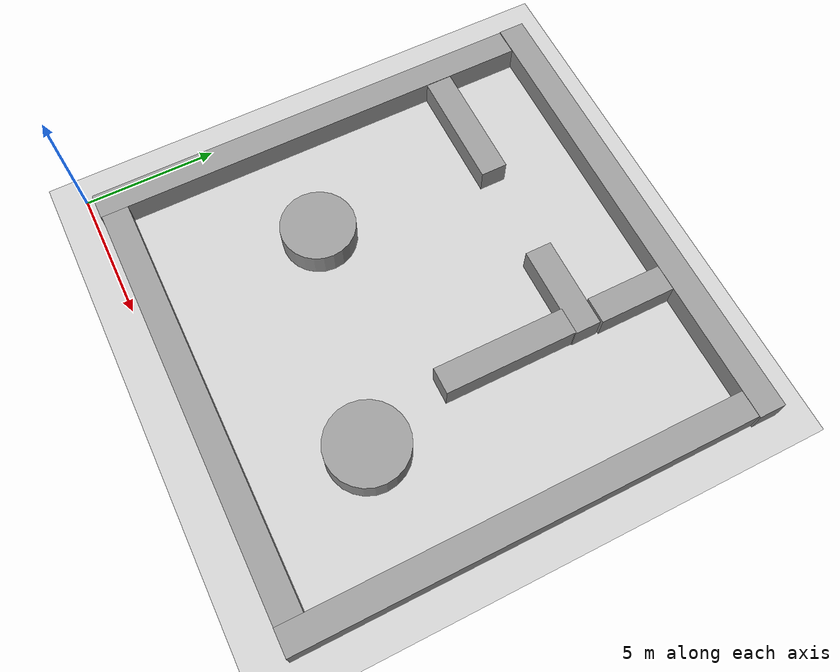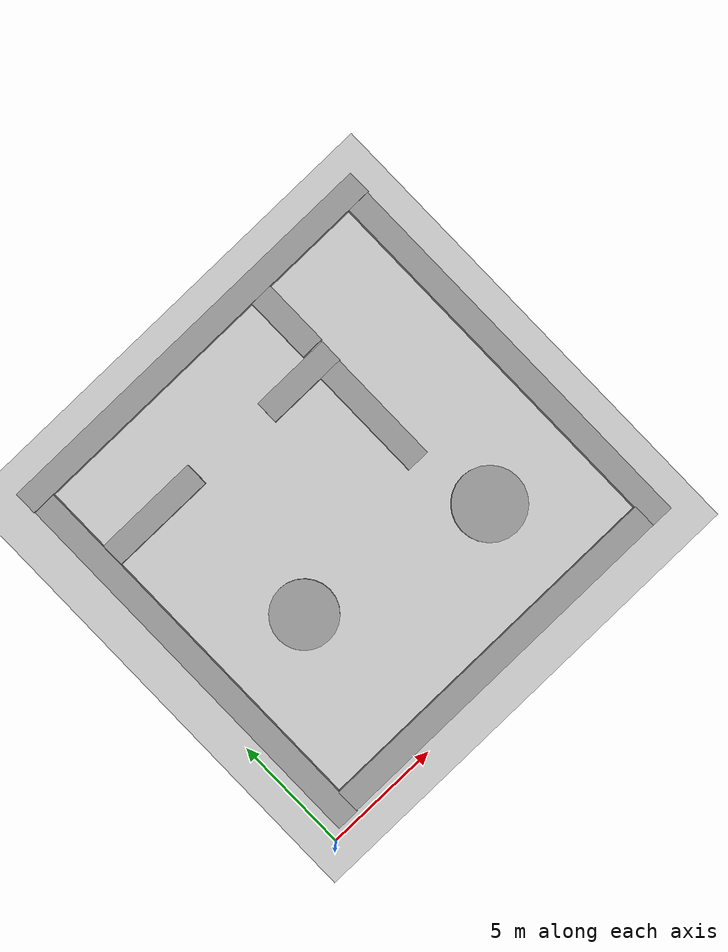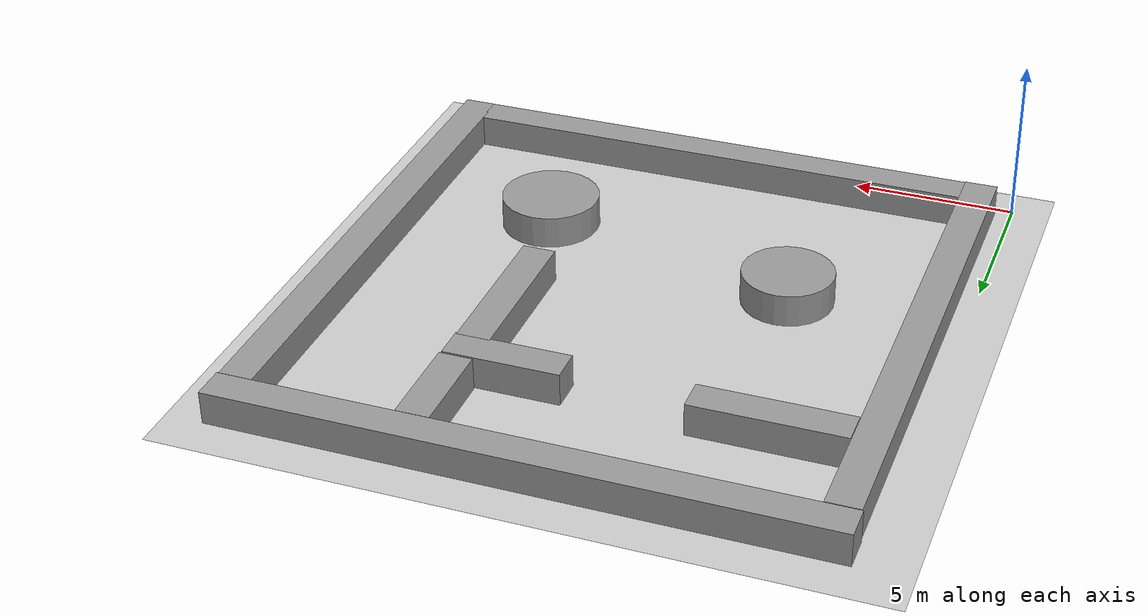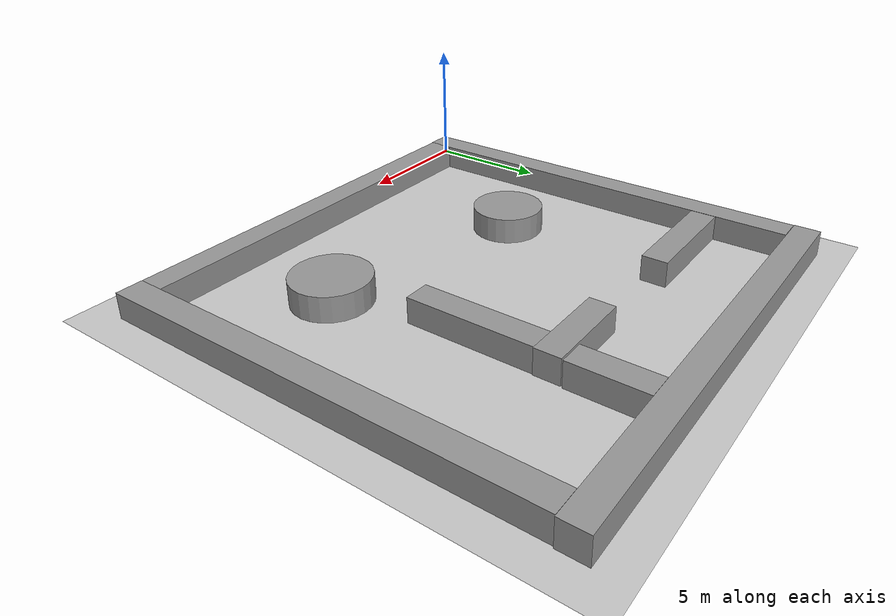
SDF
<sdf version="1.4">
 <world name="default">
  <light name="sun" type="directional">
   <pose>0 0 10 0 -0 0</pose>
   <diffuse>0.8 0.8 0.8 1</diffuse>
   <specular>0.2 0.2 0.2 1</specular>
   <attenuation>
    <range>1000</range>
    <constant>0.9</constant>
    <linear>0.01</linear>
    <quadratic>0.001</quadratic>
   </attenuation>
   <direction>-0.5 0.1 -0.9</direction>
  </light>
  <model name="ground_plane">
   <static>1</static>
   <link name="link">
    <collision name="collision">
     <geometry><plane><normal>0 0 1</normal><size>100 100</size></plane></geometry>
     <surface><friction><ode><mu>100</mu><mu2>50</mu2></ode></friction></surface>
    </collision>
    <visual name="visual">
     <cast_shadows>0</cast_shadows>
     <geometry><plane><normal>0 0 1</normal><size>100 100</size></plane></geometry>
     <material>
      <script><uri>file://media/materials/scripts/gazebo.material</uri><name>Gazebo/Grey</name></script>
     </material>
    </visual>
    <velocity_decay><linear>0</linear><angular>0</angular></velocity_decay>
   </link>
  </model>
  <physics type="ode">
   <max_step_size>0.001</max_step_size>
   <real_time_factor>1</real_time_factor>
   <real_time_update_rate>1000</real_time_update_rate>
   <gravity>0 0 -9.8</gravity>
  </physics>
  <scene><ambient>0.4 0.4 0.4 1</ambient><background>0.7 0.7 0.7 1</background><shadows>1</shadows></scene>
  <spherical_coordinates>
   <surface_model>EARTH_WGS84</surface_model>
   <latitude_deg>0</latitude_deg>
   <longitude_deg>0</longitude_deg>
   <elevation>0</elevation>
   <heading_deg>0</heading_deg>
  </spherical_coordinates>
  <model name="unit_box_1">
   <pose>9.43514 0.841884 0.5 0 -0 0</pose>
   <link name="link">
    <inertial>
     <mass>1</mass>
     <inertia><ixx>1</ixx><ixy>0</ixy><ixz>0</ixz><iyy>1</iyy><iyz>0</iyz><izz>1</izz></inertia>
    </inertial>
    <collision name="collision"><geometry><box><size>15.9568 1 1</size></box></geometry></collision>
    <visual name="visual">
     <geometry><box><size>15.9568 1 1</size></box></geometry>
     <material>
      <script><uri>file://media/materials/scripts/gazebo.material</uri><name>Gazebo/Grey</name></script>
     </material>
    </visual>
    <velocity_decay><linear>0</linear><angular>0</angular></velocity_decay>
   </link>
   <static>1</static>
  </model>
  <model name="unit_box_2">
   <pose>0.989322 8.79807 0.5 0 -0 0</pose>
   <link name="link">
    <inertial>
     <mass>1</mass>
     <inertia><ixx>1</ixx><ixy>0</ixy><ixz>0</ixz><iyy>1</iyy><iyz>0</iyz><izz>1</izz></inertia>
    </inertial>
    <collision name="collision"><geometry><box><size>1 16.9838 1</size></box></geometry></collision>
    <visual name="visual">
     <geometry><box><size>1 16.9838 1</size></box></geometry>
     <material>
      <script><uri>file://media/materials/scripts/gazebo.material</uri><name>Gazebo/Grey</name></script>
     </material>
    </visual>
    <velocity_decay><linear>0</linear><angular>0</angular></velocity_decay>
   </link>
   <static>1</static>
  </model>
  <model name="unit_box_3">
   <pose>17.8695 8.8199 0.5 0 -0 0</pose>
   <link name="link">
    <inertial>
     <mass>1</mass>
     <inertia><ixx>1</ixx><ixy>0</ixy><ixz>0</ixz><iyy>1</iyy><iyz>0</iyz><izz>1</izz></inertia>
    </inertial>
    <collision name="collision"><geometry><box><size>1 16.9681 1</size></box></geometry></collision>
    <visual name="visual">
     <geometry><box><size>1 16.9681 1</size></box></geometry>
     <material>
      <script><uri>file://media/materials/scripts/gazebo.material</uri><name>Gazebo/Grey</name></script>
     </material>
    </visual>
    <velocity_decay><linear>0</linear><angular>0</angular></velocity_decay>
   </link>
   <static>1</static>
  </model>
  <model name="unit_box_4">
   <pose>9.44094 17.8105 0.5 0 -0 0</pose>
   <link name="link">
    <inertial>
     <mass>1</mass>
     <inertia><ixx>1</ixx><ixy>0</ixy><ixz>0</ixz><iyy>1</iyy><iyz>0</iyz><izz>1</izz></inertia>
    </inertial>
    <collision name="collision"><geometry><box><size>17.9626 1 1</size></box></geometry></collision>
    <visual name="visual">
     <geometry><box><size>17.9626 1 1</size></box></geometry>
     <material>
      <script><uri>file://media/materials/scripts/gazebo.material</uri><name>Gazebo/Grey</name></script>
     </material>
    </visual>
    <velocity_decay><linear>0</linear><angular>0</angular></velocity_decay>
   </link>
   <static>1</static>
  </model>
  <model name="unit_cylinder_1">
   <pose>5.26671 7.22107 0.5 0 -0 0</pose>
   <link name="link">
    <inertial>
     <mass>1</mass>
     <inertia><ixx>1</ixx><ixy>0</ixy><ixz>0</ixz><iyy>1</iyy><iyz>0</iyz><izz>1</izz></inertia>
    </inertial>
    <collision name="collision">
     <geometry><cylinder><radius>1.39104</radius><length>1</length></cylinder></geometry>
    </collision>
    <visual name="visual">
     <geometry><cylinder><radius>1.39104</radius><length>1</length></cylinder></geometry>
     <material>
      <script><uri>file://media/materials/scripts/gazebo.material</uri><name>Gazebo/Grey</name></script>
     </material>
    </visual>
    <velocity_decay><linear>0</linear><angular>0</angular></velocity_decay>
   </link>
   <static>1</static>
  </model>
  <model name="unit_box_5">
   <pose>3.77422 14.0337 0.5 0 -0 0</pose>
   <link name="link">
    <inertial>
     <mass>1</mass>
     <inertia><ixx>1</ixx><ixy>0</ixy><ixz>0</ixz><iyy>1</iyy><iyz>0</iyz><izz>1</izz></inertia>
    </inertial>
    <collision name="collision"><geometry><box><size>4.53436 1 1</size></box></geometry></collision>
    <visual name="visual">
     <geometry><box><size>4.53436 1 1</size></box></geometry>
     <material>
      <script><uri>file://media/materials/scripts/gazebo.material</uri><name>Gazebo/Grey</name></script>
     </material>
    </visual>
    <velocity_decay><linear>0</linear><angular>0</angular></velocity_decay>
   </link>
   <static>1</static>
  </model>
  <model name="unit_box_6">
   <pose>11.3716 13.8689 0.5 0 -0 0</pose>
   <link name="link">
    <inertial>
     <mass>1</mass>
     <inertia><ixx>1</ixx><ixy>0</ixy><ixz>0</ixz><iyy>1</iyy><iyz>0</iyz><izz>1</izz></inertia>
    </inertial>
    <collision name="collision"><geometry><box><size>3.47449 1 1</size></box></geometry></collision>
    <visual name="visual">
     <geometry><box><size>3.47449 1 1</size></box></geometry>
     <material>
      <script><uri>file://media/materials/scripts/gazebo.material</uri><name>Gazebo/Grey</name></script>
     </material>
    </visual>
    <velocity_decay><linear>0</linear><angular>0</angular></velocity_decay>
   </link>
   <static>1</static>
  </model>
  <model name="unit_cylinder_2">
   <pose>13.4221 5.32773 0.5 0 -0 0</pose>
   <link name="link">
    <inertial>
     <mass>1</mass>
     <inertia><ixx>1</ixx><ixy>0</ixy><ixz>0</ixz><iyy>1</iyy><iyz>0</iyz><izz>1</izz></inertia>
    </inertial>
    <collision name="collision">
     <geometry><cylinder><radius>1.50935</radius><length>1</length></cylinder></geometry>
    </collision>
    <visual name="visual">
     <geometry><cylinder><radius>1.50935</radius><length>1</length></cylinder></geometry>
     <material>
      <script><uri>file://media/materials/scripts/gazebo.material</uri><name>Gazebo/Grey</name></script>
     </material>
    </visual>
    <velocity_decay><linear>0</linear><angular>0</angular></velocity_decay>
   </link>
   <static>1</static>
  </model>
  <model name="unit_box_7">
   <pose>12.6514 15.8696 0.5 0 -0 0</pose>
   <link name="link">
    <inertial>
     <mass>1</mass>
     <inertia><ixx>1</ixx><ixy>0</ixy><ixz>0</ixz><iyy>1</iyy><iyz>0</iyz><izz>1</izz></inertia>
    </inertial>
    <collision name="collision"><geometry><box><size>1 2.8726 1</size></box></geometry></collision>
    <visual name="visual">
     <geometry><box><size>1 2.8726 1</size></box></geometry>
     <material>
      <script><uri>file://media/materials/scripts/gazebo.material</uri><name>Gazebo/Grey</name></script>
     </material>
    </visual>
    <velocity_decay><linear>0</linear><angular>0</angular></velocity_decay>
   </link>
   <static>1</static>
  </model>
  <model name="unit_box_8">
   <pose>12.5712 10.9325 0.5 0 -0 0</pose>
   <link name="link">
    <inertial>
     <mass>1</mass>
     <inertia><ixx>1</ixx><ixy>0</ixy><ixz>0</ixz><iyy>1</iyy><iyz>0</iyz><izz>1</izz></inertia>
    </inertial>
    <collision name="collision"><geometry><box><size>1 4.9869 1</size></box></geometry></collision>
    <visual name="visual">
     <geometry><box><size>1 4.9869 1</size></box></geometry>
     <material>
      <script><uri>file://media/materials/scripts/gazebo.material</uri><name>Gazebo/Grey</name></script>
     </material>
    </visual>
    <velocity_decay><linear>0</linear><angular>0</angular></velocity_decay>
   </link>
   <static>1</static>
  </model>
 </world>
</sdf>
